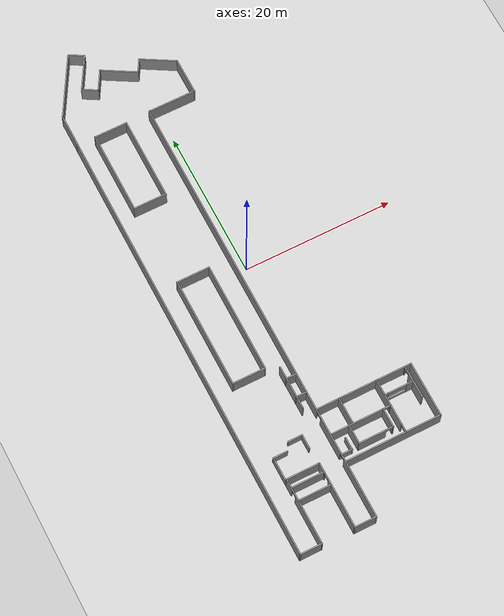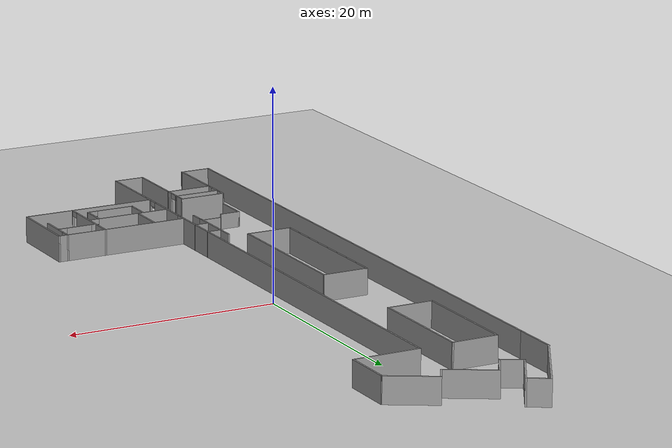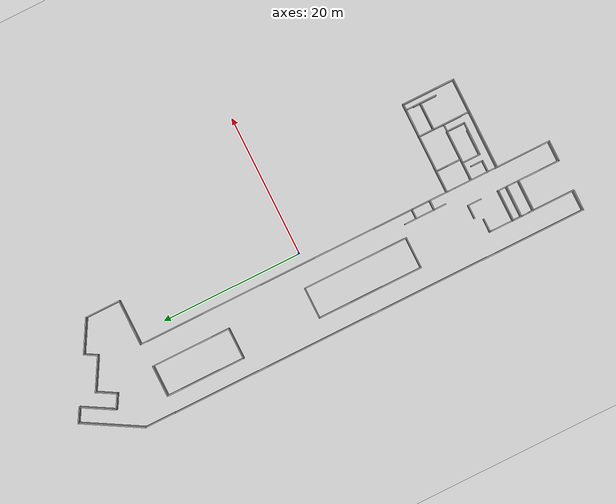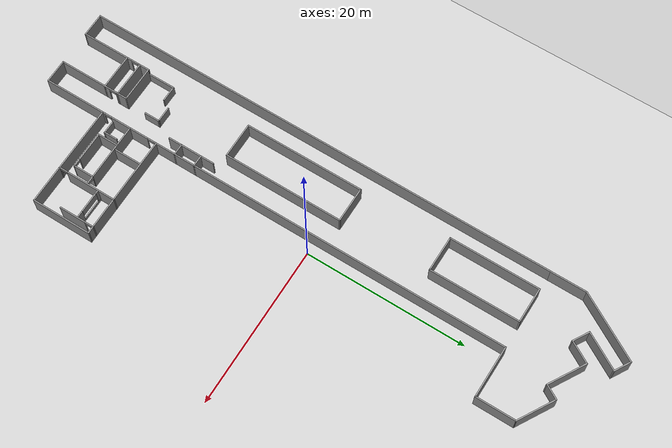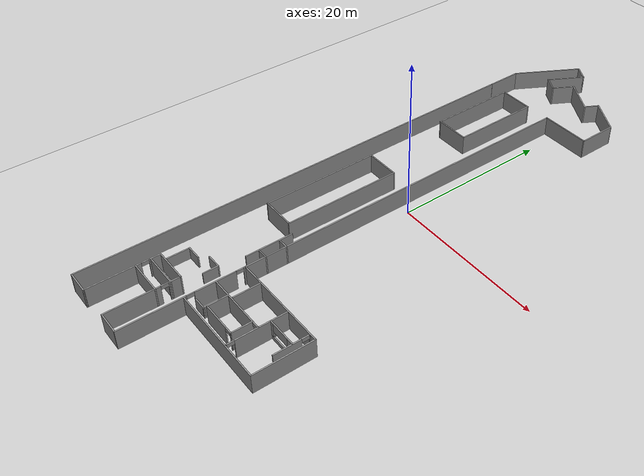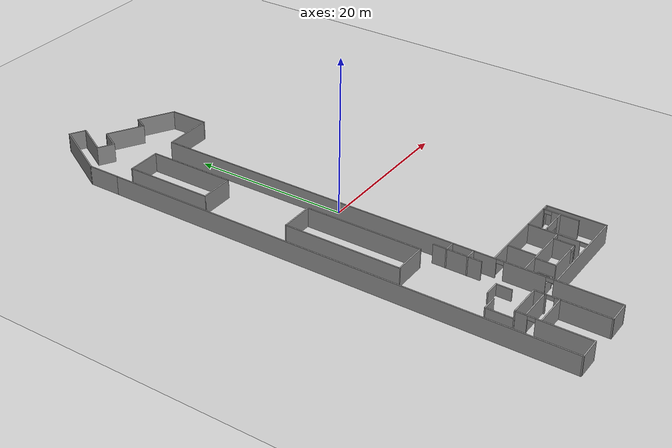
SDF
<?xml version='1.0'?>
<sdf version='1.6'>
  <world name='default'>

    <!-- Camera Pose -->
    <gui fullscreen='0'>
      <camera name='user_camera'>
        <pose>-5 -20 20 0 1.5707 0</pose>
      </camera>
    </gui>

    <!-- physics -->
    <physics type='ode'>
      <max_step_size>0.001</max_step_size>
      <real_time_update_rate>1000</real_time_update_rate>
    </physics>

    <!-- sun -->
    <include>
      <uri>model://sun</uri>
    </include>

    <!-- Ground Plane -->
    <include>
      <uri>model://ground_plane</uri>
    </include>

    <!-- fei_k5__empty -->
    <include>
      <name>fei_k5__empty</name>
      <uri>model://fei_k5__empty</uri>
    </include>

  </world>
</sdf>
